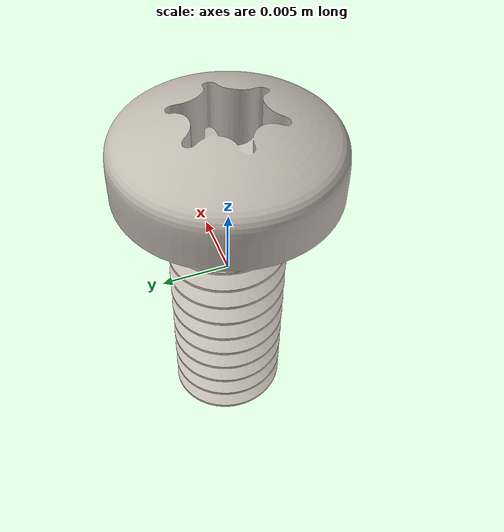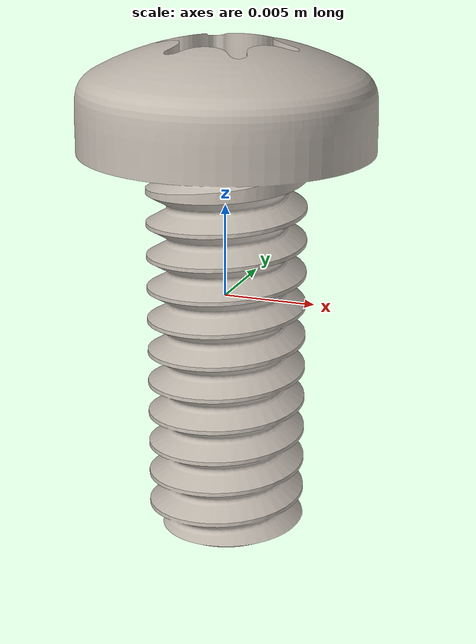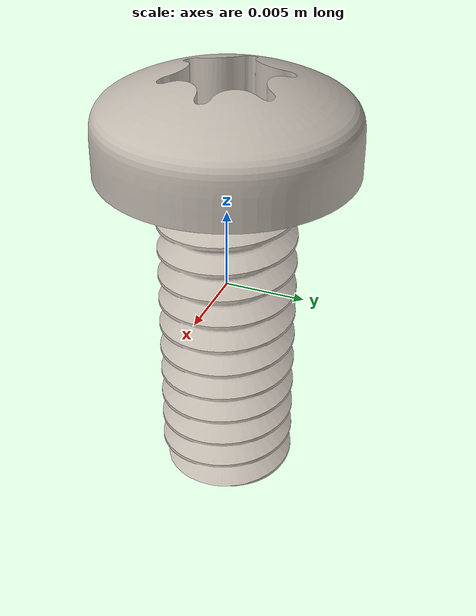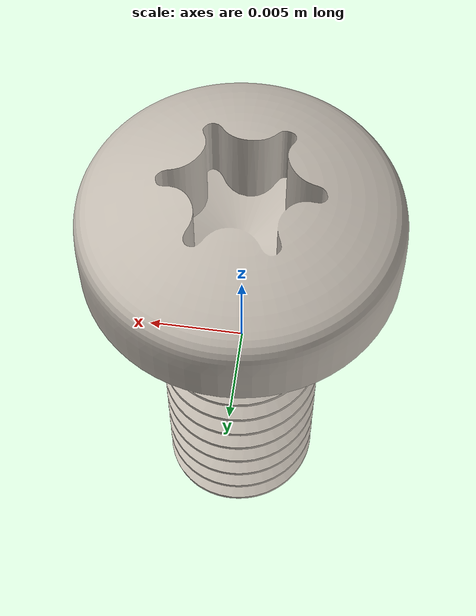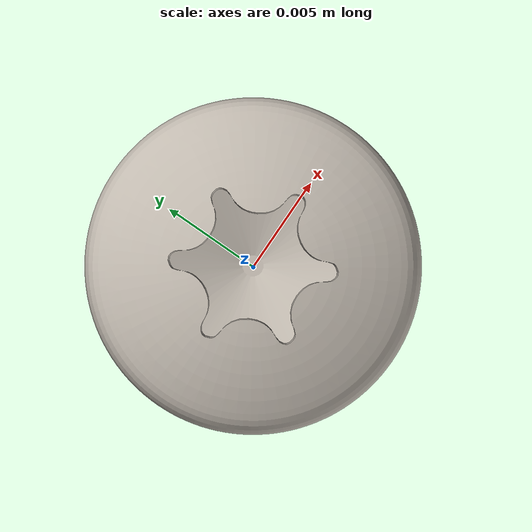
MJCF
<?xml version="1.0" encoding="UTF-8"?>
<mujoco model="panhead_torx">
  <asset>
    <texture type="2d" file="textures/metal.png" name="metal_tex"/>
    <material name="metal_mat" texture="metal_tex" specular="0.9" shininess="0.7" reflectance="0.25"/>
    <mesh name="panhead_torx_mesh" file="meshes/panhead_torx.stl"/>
  </asset>
  <worldbody>
    <body name="panhead_torx" pos="0 0 0">
      <freejoint name="panhead_torx_joint"/>
      <geom name="panhead_torx_visual" type="mesh" mesh="panhead_torx_mesh"
            material="metal_mat" group="1" contype="0" conaffinity="0"/>
      <geom name="panhead_torx_col" type="cylinder" group="3"
            size="0.00793234 0.0136228"
            pos="0 0 0.000100424" quat="1 0 0 0"
            mass="0.001" friction="1.0 0.05 0.001" condim="4"/>
    </body>
  </worldbody>
</mujoco>
